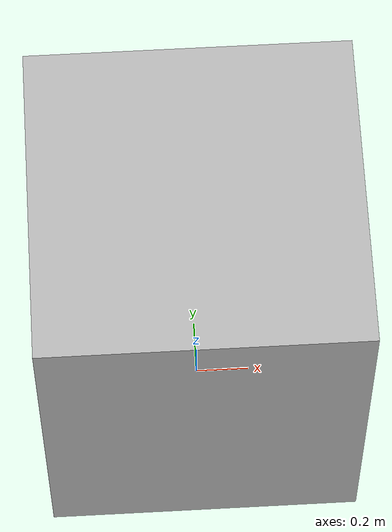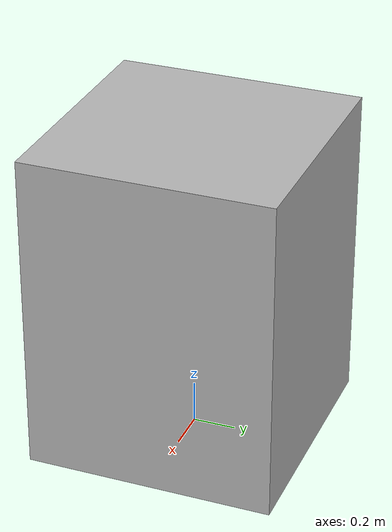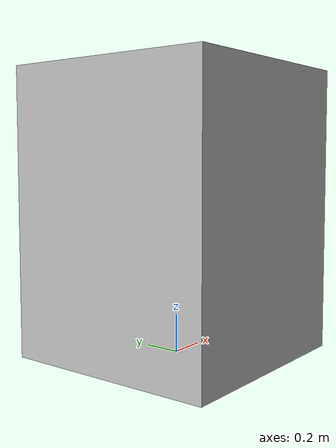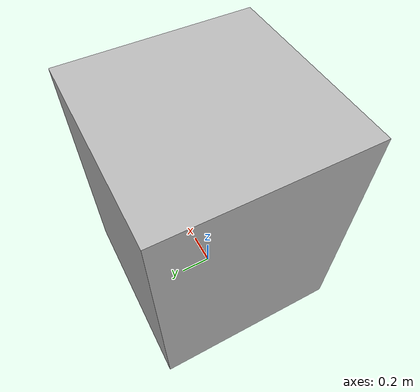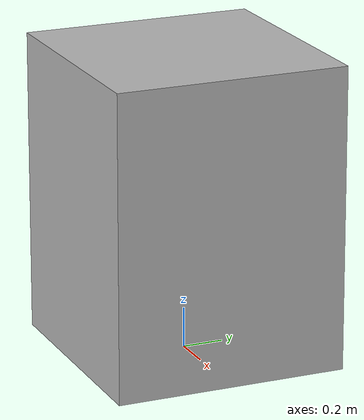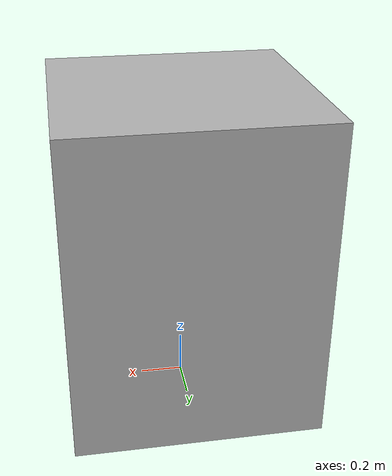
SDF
<?xml version='1.0'?>
<sdf version='1.6'>
  <model name="obstacles">
  <static>true</static>
            <link name='boundary_one'>
            <pose>0 0 0.75 0 0 0</pose>

            <collision name='collision'>
              <geometry>
                <box>
                  <size>1.15 1.15 1.5</size>
                </box>
              </geometry>
            </collision>

            <visual name='visual'>
              <geometry>
                <box>
                  <size>1.15 1.15 1.5</size>
                </box>
              </geometry>
                <material>
                  <script>
                    <uri>model://brick_box_3x1x3/materials/scripts</uri>
                    <uri>model://brick_box_3x1x3/materials/textures</uri>
                    <name>BrickBox/Diffuse</name>
                  </script>
                </material>
            </visual>
          </link>
  </model>
</sdf>
